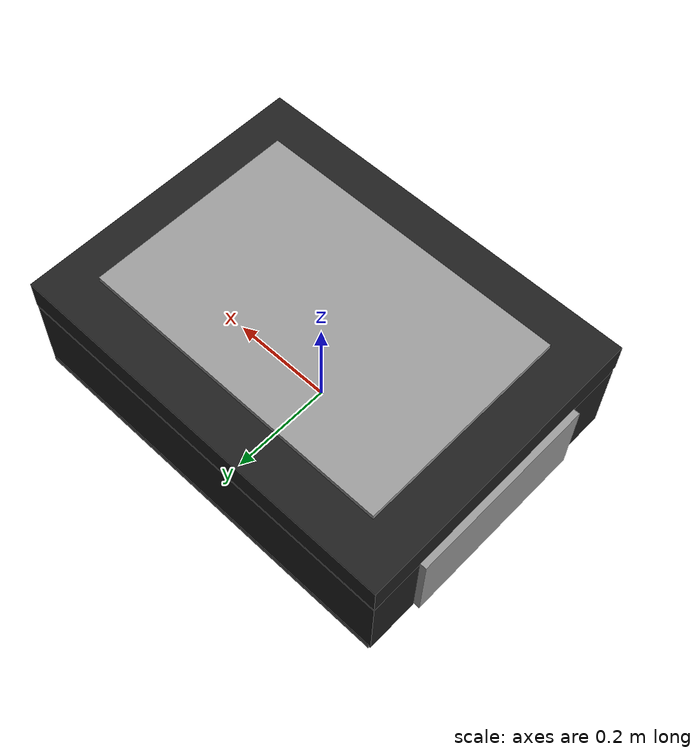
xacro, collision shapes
<?xml version="1.0"?>
<robot xmlns:xacro="http://www.ros.org/wiki/xacro">

    <link name="base_footprint">
        <origin xyz="0.0 0.0 0.0" rpy="0.0 0.0 0.0"/>
    </link>

    <link name="base_link">
        <visual>
            <origin xyz="0 0 0" rpy="0 0 0" />
            <geometry>
                <mesh filename="package://robot_description/meshes/base_link.STL" />
            </geometry>
            <material name="Black_wheels"/>
        </visual>
        <collision>
            <origin xyz="0 0 0" rpy="0 0 0" />
            <geometry>
                <box size="0.767 0.5776 0.008"/>
            </geometry>
        </collision>
        <xacro:box_inertia m="10.0" l="0.767" h="0.005" w="0.5776"
                           xyz="0 0 0" rpy="0 0 0" />
    </link>

    <link name="front_side_link">
        <visual>
            <origin xyz="0 0 0" rpy="1.5708 0 -1.5708" />
            <geometry>
                <mesh filename="package://robot_description/meshes/FRONTFACE.STL"/>
            </geometry>
            <material name="Grey_body"/>
        </visual>
        <collision>
            <origin xyz="0 0 0.080706" rpy="1.5708 0 -1.5708" />
            <geometry>
                <box size="0.37 0.161412 0.02"/>
            </geometry>
        </collision>
        <xacro:box_inertia m="0.943263635545501" w="0.161412" h="0.02" l="0.37"
                           xyz="0 0 0.080706" rpy="1.5708 0 -1.5708" />
    </link>

    <link name="back_side_link">
        <visual>
            <origin xyz="0 0 0" rpy="-1.5708 0 1.5708" />
            <geometry>
                <mesh filename="package://robot_description/meshes/BACKFACE.STL"/>
            </geometry>
            <material name="Grey_body"/>
        </visual>
        <collision>
            <origin xyz="0 0 0.080706" rpy="-1.5708 0 1.5708" />
            <geometry>
                <box size="0.37 0.161412 0.02"/>
            </geometry>
        </collision>
        <xacro:box_inertia m="0.943263635545501" w="0.161412" h="0.02" l="0.37"
                           xyz="0 0 0.080706" rpy="1.5708 0 -1.5708" />
    </link>

    <link name="right_side_link">
        <visual>
            <origin xyz="0 0 0" rpy="1.5708 0 0" />
            <geometry>
                <mesh filename="package://robot_description/meshes/RIGHTSIDE.STL"/>
            </geometry>
            <material name="Black_wheels"/>
        </visual>
        <collision>
            <origin xyz="0 0.053 -0.08" rpy="1.5708 0 0" />
            <geometry>
                <box size="0.773425 0.161412 0.1"/>
            </geometry>
        </collision>
        <xacro:box_inertia m="2.59245784828295" w="0.161412" l="0.773425" h="0.1"
                           xyz="0 0.05 -0.080706" rpy="1.5708 0 0" />
    </link>

    <link name="left_side_link">
        <visual>
            <origin xyz="0 0 0" rpy="1.5708 0 3.1416" />
            <geometry>
                <mesh filename="package://robot_description/meshes/LEFTSIDE.STL"/>
            </geometry>
            <material name="Black_wheels"/>
        </visual>
        <collision>
            <origin xyz="0 -0.053 -0.08" rpy="1.5708 0 0" />
            <geometry>
                <box size="0.773425 0.161412 0.1"/>
            </geometry>
        </collision>
        <xacro:box_inertia m="2.59245784828295" w="0.161412" l="0.773425" h="0.1"
                           xyz="0 -0.05 -0.080706" rpy="1.5708 0 0" />
    </link>

    <link name="flange_link">
        <visual>
            <origin xyz="0 0 0" rpy="1.5708 0 0" />
            <geometry>
                <mesh filename="package://robot_description/meshes/FLANGE.STL"/>
            </geometry>
            <material name="Black_wheels"/>
        </visual>
        <collision>
            <origin xyz="0 0 0.035" rpy="1.5708 0 0" />
            <geometry>
                <box size="0.773425 0.06 0.578"/>
            </geometry>
        </collision>
        <xacro:box_inertia m="4.55743149884064" w="0.06" l="0.773425" h="0.578"
                           xyz="0 0 0.035" rpy="1.5708 0 0" />
    </link>

    <link name="top_lift_link">
        <visual>
            <origin xyz="0 0 0" rpy="1.5707963267949 0 3.14159265358979" />
            <geometry>
                <mesh filename="package://robot_description/meshes/TOPBASE.STL"/>
            </geometry>
            <material name="Grey_body"/>
        </visual>
        <collision>
            <origin xyz="0 0 0" rpy="1.5707963267949 0 3.14159265358979" />
            <geometry>
                <box size="0.6123 0.01 0.4123"/>
            </geometry>
        </collision>
        <xacro:box_inertia m="2.0" w="0.01" l="0.6123" h="0.4123"
                           xyz="0 0 0" rpy="1.5707963267949 0 3.14159265358979" />
    </link>

    <link name="lidarbase_link">
        <visual>
            <origin xyz="0 0 0" rpy="0 0 0" />
            <geometry>
                <mesh filename="package://robot_description/meshes/liDAR_SPACER.STL"/>
            </geometry>
            <material name="Orange_body"/>
        </visual>
        <collision>
            <origin xyz="-0.0655 -0.032 -0.01" rpy="0 0 0" />
            <geometry>
                <box size="0.131 0.064 0.02"/>
            </geometry>
        </collision>
        <xacro:box_inertia m="0.044971" l="0.131" w="0.064" h="0.02"
                           xyz="-0.0655 -0.032 -0.01" rpy="0 0 0" />
    </link>

    <joint name="base_base_joint" type="fixed">
        <parent link="base_footprint"/>
        <child link="base_link"/>
        <origin xyz="0.0 0.0 0.02" rpy="0.0 0.0 0.0"/>
    </joint>

    <joint name="base_front_joint" type="fixed">
        <parent link="base_link"/>
        <child link="front_side_link"/>
        <origin xyz="0.388 0.0 0.0" rpy="0.0 0.0 0.0"/>
    </joint>

    <joint name="base_back_joint" type="fixed">
        <parent link="base_link"/>
        <child link="back_side_link"/>
        <origin xyz="-0.388 0.0 0.0" rpy="0.0 0.0 0.0"/>
    </joint>

    <joint name="base_right_joint" type="fixed">
        <parent link="base_link"/>
        <child link="right_side_link"/>
        <origin xyz=" 0.0 -0.2902 0.161" rpy="0.0 0.0 0.0"/>
    </joint>

    <joint name="base_left_joint" type="fixed">
        <parent link="base_link"/>
        <child link="left_side_link"/>
        <origin xyz=" 0.0 0.2902 0.161" rpy="0.0 0.0 0.0"/>
    </joint>

    <joint name="base_flange_joint" type="fixed">
        <parent link="base_link"/>
        <child link="flange_link"/>
        <origin xyz="-0.00073426 -0.00062835 0.163" rpy="0.0 0.0 0.0"/>
    </joint>

    <joint name="base_top_joint" type="prismatic">
        <parent link="base_link"/>
        <child link="top_lift_link"/>
        <axis xyz="0 0 1"/>
        <limit lower="-0.01" upper="0.154" velocity="0.1" effort="5000.0"/>
        <dynamics damping="5.0" friction="1.0"/>
        <origin xyz="0.0 0.0 0.2374" rpy="0.0 0.0 0.0"/>
    </joint>

    <joint name="base_lidarbase_joint" type="fixed">
        <parent link="base_link"/>
        <child link="lidarbase_link"/>
        <origin xyz="0.44615 0.0325 0.026" rpy="0.0 0.0 0.0"/>
    </joint>

</robot>
